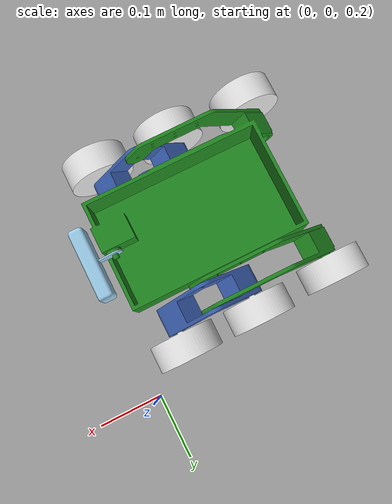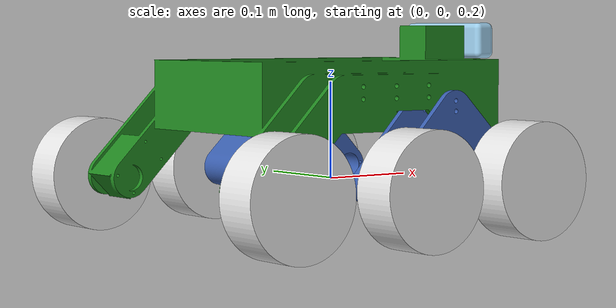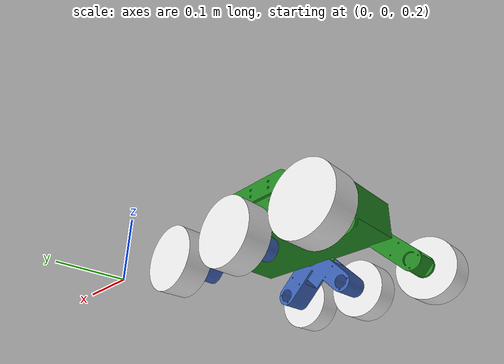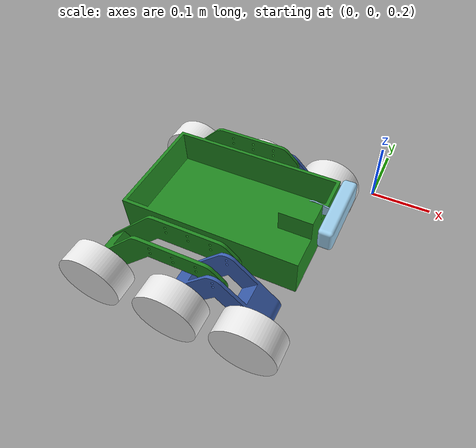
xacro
<?xml version="1.0" encoding="utf-8"?>
<!-- |    This document was autogenerated by xacro from robot.urdf                     | -->
<!-- |    EDITING THIS FILE BY HAND IS NOT RECOMMENDED                                 | -->
<robot name="robot">
  <xacro:include filename="$(find robot_description)/urdf/robot.trans" />
  <xacro:include filename="$(find robot_description)/urdf/robot.gazebo" />
  <link name="dummy" fixed="true">
  </link>

  <link name="l1">
    <visual>
      <origin xyz="-0.1623976833979026424 -0.20144544793473978528 0.26749193742773980098" rpy="1.5707963207290305263 2.9721157967096936663e-09 3.8418044321784632697e-10" />

      <geometry>
        <mesh filename="package://robot_description/archives/l1.stl"/>
      </geometry>
      <material name="l1_material">
        <color rgba="0.12941176470588236502 0.54117647058823525885 0.12941176470588236502 1.0"/>
      </material>
    </visual>
    <collision>
      <origin xyz="-0.1623976833979026424 -0.20144544793473978528 0.26749193742773980098" rpy="1.5707963207290305263 2.9721157967096936663e-09 3.8418044321784632697e-10" />
      <geometry>
        <mesh filename="package://robot_description/archives/l1.stl"/>
      </geometry>
    </collision>

    <inertial>
      <origin xyz="-0.18259398235284227119 -0.20236856510100109663 0.28038785160103718574" rpy="0 0 0"/>
      <mass value="1.1600736868674601521" />
      <inertia ixx="0.0066008651014344225244" ixy="0.000135586235209932273"  ixz="-0.0014781260412425468835" iyy="0.0106966871170354038" iyz="6.649765397261118234e-05" izz="0.015519266864299045838" />
    </inertial>
  </link>
  <link name="l2_l3_modificado-2_2">
    <visual>
        <origin xyz="5.5511151231257827021e-17 -2.7755575615628913511e-17 -0.039000000000000006883" rpy="1.570796326794896558 -8.2858707243642392136e-26 -3.3812745298728782663e-18" />
        <geometry>
        <mesh filename="package://robot_description/archives/l2_l3_modificado-2.stl"/>
        </geometry>
        <material name="l2_l3_modificado-2_material">
        <color rgba="0.2313725490196078538 0.38039215686274507888 0.7058823529411765163 1.0"/>
        </material>
    </visual>
    <collision>
        <origin xyz="5.5511151231257827021e-17 -2.7755575615628913511e-17 -0.039000000000000006883" rpy="1.570796326794896558 -8.2858707243642392136e-26 -3.3812745298728782663e-18" />
        <geometry>
        <mesh filename="package://robot_description/archives/l2_l3_modificado-2.stl"/>
        </geometry>
    </collision>
    <inertial>
        <origin xyz="0.041604917307636699042 -0.00094186232242261607416 -0.01700000000000001163" rpy="0 0 0"/>
        <mass value="0.19878085526035954578" />
        <inertia ixx="0.00045600719533735715626" ixy="-2.1979347753071165692e-06"  ixz="4.9485917399825457933e-28" iyy="0.0001117948906171440602" iyz="-6.0931890735852266954e-30" izz="0.00048695372639961931327" />
    </inertial>
  </link>

  <link name="l2_l3_modificado-2">
    <visual>
      <origin xyz="5.5511151231257827021e-17 0 -0.038999999999999979128" rpy="1.570796326794896558 4.2986550190141303174e-25 -3.216697786438753181e-18" />
      <geometry>
        <mesh filename="package://robot_description/archives/l2_l3_modificado-2.stl"/>
      </geometry>
      <material name="l2_l3_modificado-2_material">
        <color rgba="0.2313725490196078538 0.38039215686274507888 0.7058823529411765163 1.0"/>
      </material>
    </visual>
    <collision>
      <origin xyz="5.5511151231257827021e-17 0 -0.038999999999999979128" rpy="1.570796326794896558 4.2986550190141303174e-25 -3.216697786438753181e-18" />
      <geometry>
        <mesh filename="package://robot_description/archives/l2_l3_modificado-2.stl"/>
      </geometry>
    </collision>
    <inertial>
      <origin xyz="0.041604917307636699042 -0.00094186232242258831858 -0.016999999999999983874" rpy="0 0 0"/>
      <mass value="0.19878085526035954578" />
      <inertia ixx="0.00045600719533735693942" ixy="-2.1979347753071152987e-06"  ixz="-1.0461624586299991404e-28" iyy="0.0001117948906171440602" iyz="9.2711153304661378454e-30" izz="0.00048695372639961931327" />
    </inertial>
  </link>
   <link name="rueda10cm">
    <visual>
      <origin xyz="1.3877787807814456755e-17 0 -0.0030000000000000026645" rpy="-3.141592653589793116 -1.3232887103194747433e-25 2.6346479003792640069e-17" />
      <geometry>
          <mesh filename="package://robot_description/archives/rueda10cm.stl"/>
      </geometry>
      <material name="rueda10cm_material">
        <color rgba="0.92156862745098033773 0.92156862745098033773 0.92156862745098033773 1.0"/>
      </material>
    </visual>
    <collision>
      <origin xyz="1.3877787807814456755e-17 0 -0.0030000000000000026645" rpy="-3.141592653589793116 -1.3232887103194747433e-25 2.6346479003792640069e-17" />
      <geometry>
          <mesh filename="package://robot_description/archives/rueda10cm.stl"/>
      </geometry>
    </collision>
    <inertial>
      <origin xyz="1.294233490998378539e-17 9.8517850733825063838e-27 -0.022983887084686488445" rpy="0 0 0"/>
      <mass value="0.39299360600999816429" />
      <inertia ixx="0.00029793490712322410856" ixy="1.3173188654394999504e-20"  ixz="9.1874021171282252066e-29" iyy="0.00029793490712322416277" iyz="3.7183220189298748782e-29" izz="0.00049087753367729617185" />
    </inertial>
  </link>

  <link name="rueda10cm_2">
    <visual>
        <origin xyz="0 -1.3877787807814456755e-17 -0.0030000000000000026645" rpy="3.141592653589793116 -2.6504195547553351625e-25 -5.0019989647842346759e-17" />
        <geometry>
          <mesh filename="package://robot_description/archives/rueda10cm.stl"/>
        </geometry>
        <material name="rueda10cm_material">
        <color rgba="0.92156862745098033773 0.92156862745098033773 0.92156862745098033773 1.0"/>
        </material>
    </visual>
    <collision>
        <origin xyz="0 -1.3877787807814456755e-17 -0.0030000000000000026645" rpy="3.141592653589793116 -2.6504195547553351625e-25 -5.0019989647842346759e-17" />
        <geometry>
          <mesh filename="package://robot_description/archives/rueda10cm.stl"/>
        </geometry>
    </collision>
    <inertial>
        <origin xyz="-9.3545290370249415002e-19 -1.387778780482895257e-17 -0.022983887084686488445" rpy="0 0 0"/>
        <mass value="0.39299360600999816429" />
        <inertia ixx="0.00029793490712322421698" ixy="-2.5879488531348470936e-20"  ixz="2.7564737175589557739e-28" iyy="0.00029793490712322405435" iyz="-3.6156487985184271184e-28" izz="0.00049087753367729617185" />
    </inertial>
  </link>

  <link name="rueda10cm_3">
    <visual>
        <origin xyz="0 -4.1633363423443370266e-17 -0.0030000000000000026645" rpy="3.141592653589793116 2.4908934271607221179e-25 -8.0053156761873463748e-18" />
        <geometry>
          <mesh filename="package://robot_description/archives/rueda10cm.stl"/>
        </geometry>
        <material name="rueda10cm_material">
        <color rgba="0.92156862745098033773 0.92156862745098033773 0.92156862745098033773 1.0"/>
        </material>
    </visual>
    <collision>
        <origin xyz="0 -4.1633363423443370266e-17 -0.0030000000000000026645" rpy="3.141592653589793116 2.4908934271607221179e-25 -8.0053156761873463748e-18" />
        <geometry>
          <mesh filename="package://robot_description/archives/rueda10cm.stl"/>
        </geometry>
    </collision>
    <inertial>
        <origin xyz="-9.3545289037793300012e-19 -4.1633363414700092053e-17 -0.022983887084686488445" rpy="0 0 0"/>
        <mass value="0.39299360600999816429" />
        <inertia ixx="0.00029793490712322421698" ixy="-2.439209806515452231e-21"  ixz="-2.0483036187190332069e-28" iyy="0.00029793490712322416277" iyz="-2.9292185877211298753e-28" izz="0.00049087753367729638869" />
    </inertial>
  </link>

  <link name="rueda10cm_4">
    <visual>
        <origin xyz="0 6.9388939039072283776e-18 -0.0029999999999999887867" rpy="3.141592653589793116 -1.1528672886827154028e-24 1.4271986254412883463e-17" />
        <geometry>
          <mesh filename="package://robot_description/archives/rueda10cm.stl"/>
        </geometry>
        <material name="rueda10cm_material">
        <color rgba="0.92156862745098033773 0.92156862745098033773 0.92156862745098033773 1.0"/>
        </material>
    </visual>
    <collision>
        <origin xyz="0 6.9388939039072283776e-18 -0.0029999999999999887867" rpy="3.141592653589793116 -1.1528672886827154028e-24 1.4271986254412883463e-17" />
        <geometry>
          <mesh filename="package://robot_description/archives/rueda10cm.stl"/>
        </geometry>
    </collision>
    <inertial>
        <origin xyz="-9.3545291045017016982e-19 6.9388939147764589971e-18 -0.022983887084686474567" rpy="0 0 0"/>
        <mass value="0.39299360600999816429" />
        <inertia ixx="0.00029793490712322421698" ixy="7.2000410004067763659e-22"  ixz="7.0590919239142746815e-28" iyy="0.00029793490712322416277" iyz="-2.9065917041569690948e-28" izz="0.00049087753367729638869" />
    </inertial>
  </link>

  <link name="rueda10cm_5">
    <visual>
        <origin xyz="-5.5511151231257827021e-17 3.8163916471489756077e-17 -0.0030000000000000026645" rpy="3.141592653589793116 4.5599766001557814531e-26 -5.3448204808567667487e-17" />
        <geometry>
          <mesh filename="package://robot_description/archives/rueda10cm.stl"/>
        </geometry>
        <material name="rueda10cm_material">
        <color rgba="0.92156862745098033773 0.92156862745098033773 0.92156862745098033773 1.0"/>
        </material>
    </visual>
    <collision>
        <origin xyz="-5.5511151231257827021e-17 3.8163916471489756077e-17 -0.0030000000000000026645" rpy="3.141592653589793116 4.5599766001557814531e-26 -5.3448204808567667487e-17" />
        <geometry>
          <mesh filename="package://robot_description/archives/rueda10cm.stl"/>
        </geometry>
    </collision>
    <inertial>
        <origin xyz="-5.6446604118712877449e-17 3.8163916471733212111e-17 -0.022983887084686488445" rpy="0 0 0"/>
        <mass value="0.39299360600999816429" />
        <inertia ixx="0.00029793490712322421698" ixy="-2.3218875773836857727e-20"  ixz="-2.1600035251038875236e-28" iyy="0.00029793490712322416277" iyz="-1.1080630077344665209e-28" izz="0.00049087753367729617185" />
    </inertial>
  </link>

  <link name="rueda10cm_6">
    <visual>
        <origin xyz="-5.5511151231257827021e-17 2.7755575615628913511e-17 -0.0030000000000000026645" rpy="-3.141592653589793116 -4.8443625614625081283e-25 6.2726312896667128663e-17" />
        <geometry>
          <mesh filename="package://robot_description/archives/rueda10cm.stl"/>
        </geometry>
        <material name="rueda10cm_material">
        <color rgba="0.92156862745098033773 0.92156862745098033773 0.92156862745098033773 1.0"/>
        </material>
    </visual>
    <collision>
        <origin xyz="-5.5511151231257827021e-17 2.7755575615628913511e-17 -0.0030000000000000026645" rpy="-3.141592653589793116 -4.8443625614625081283e-25 6.2726312896667128663e-17" />
        <geometry>
          <mesh filename="package://robot_description/archives/rueda10cm.stl"/>
        </geometry>
    </collision>
    <inertial>
        <origin xyz="-5.6446604113580856548e-17 2.7755575623592649238e-17 -0.022983887084686488445" rpy="0 0 0"/>
        <mass value="0.39299360600999816429" />
        <inertia ixx="0.00029793490712322421698" ixy="-3.8673658401404432998e-20"  ixz="-1.8414552764643867941e-28" iyy="0.00029793490712322427119" iyz="-9.4221902638914639646e-29" izz="0.00049087753367729617185" />
    </inertial>
  </link>

  <link name="conexion_mr">
  <visual>
    <origin xyz="0 6.9388939039072283776e-18 0.0010000000000000008882" rpy="-1.570796326794896558 -8.1084492077740512287e-26 -1.0989427651290170218e-18" />
    <geometry>
      <mesh filename="package://robot_description/robot/conexion_mr.stl"/>
    </geometry>
    <material name="conexion_mr_material">
      <color rgba="0.61568627450980395466 0.81176470588235294379 0.92941176470588238168 1.0"/>
    </material>
  </visual>
  <collision>
    <origin xyz="0 6.9388939039072283776e-18 0.0010000000000000008882" rpy="-1.570796326794896558 -8.1084492077740512287e-26 -1.0989427651290170218e-18" />
    <geometry>
     <mesh filename="package://robot_description/robot/conexion_mr.stl"/>
    </geometry>
  </collision>
  <inertial>
    <origin xyz="5.857444094893600759e-19 -0.031653310614634153075 -0.00098346943959469424953" rpy="0 0 0"/>
    <mass value="0.49839642683248841504" />
  <inertia ixx="0.00041895941326657270805" ixy="6.6807887356152342232e-20"  ixz="3.4618973733355235438e-11" iyy="0.00043682618846628952589" iyz="-2.1404868092836559717e-07" izz="6.2269309644916189905e-05" />
  </inertial>
  </link>

  <!--joints-->

  <joint name="dummy_joint" type="fixed">
    <parent link="dummy"/>
    <child link="l1"/>
  </joint>

  <joint name="Junta_Pasiva_Derecha" type="revolute">
      <origin xyz="-0.12847176905482229903 -0.32544544781112361154 0.28572223970686733141" rpy="1.5707960183954783329 1.5511261948845664893 -3.0795557762774570826e-07" />
      <parent link="l1" />
      <child link="l2_l3_modificado-2" />
      <axis xyz="0 0 1"/>
      <limit effort="1" velocity="20" lower="-0.56" upper="2.0071286397934788859"/>
      <joint_properties friction="0.0"/>
  </joint>
  <joint name="Junta_Pasiva_Izquierda" type="revolute">
      <origin xyz="-0.12847176915009908549 -0.077445447811123502291 0.28572223820253256354" rpy="1.5707966702343139076 1.5531332946124785099 -3.141592309819767781" />
      <parent link="l1" />
      <child link="l2_l3_modificado-2_2" />
      <axis xyz="0 0 1"/>
      <limit effort="1" velocity="20" lower="-2.0071286397934788859" upper="0.56"/>
      <joint_properties friction="0.0"/>
  </joint>
 <joint name="Junta_R2" type="continuous">
      <origin xyz="0.060104076400856659701 0.060104076400856493168 0.0050000000000000044409" rpy="-3.141592653589793116 2.9562705873466152294e-18 -1.8301287006490860598" />
      <parent link="l2_l3_modificado-2" />
      <child link="rueda10cm" />
      <axis xyz="0 0 1"/>
      <limit effort="1" velocity="20" />
      <joint_properties friction="0.0"/>
  </joint>

  <joint name="Junta_R4" type="continuous">
      <origin xyz="0.060104076400856659701 -0.060104076400856465412 0.0049999999999999489297" rpy="-3.141592653589793116 7.3658748660732636819e-17 0.92941691210605825724" />
      <parent link="l2_l3_modificado-2" />
      <child link="rueda10cm_2" />
      <axis xyz="0 0 1"/>
      <limit effort="1" velocity="20" />
      <joint_properties friction="0.0"/>
  </joint>

  <joint name="Junta_R3" type="continuous">
      <origin xyz="0.060104076400856631945 0.060104076400856520923 0.0049999999999999905631" rpy="-3.141592653589793116 -4.2241592123221963104e-16 -0.49922167178213477934" />
      <parent link="l2_l3_modificado-2_2" />
      <child link="rueda10cm_3" />
      <axis xyz="0 0 1"/>
      <limit effort="1" velocity="20" />
      <joint_properties friction="0.0"/>
  </joint>

  <joint name="Junta_R1" type="continuous">
      <origin xyz="0.060104076400856659701 -0.060104076400856507045 0.0049999999999999905631" rpy="-3.141592653589793116 -7.6282239131955771344e-16 -0.25904331776269451382" />
      <parent link="l2_l3_modificado-2_2" />
      <child link="rueda10cm_4" />
      <axis xyz="0 0 1"/>
      <limit effort="1" velocity="20" />
      <joint_properties friction="0.0"/>
  </joint>

  <joint name="Junta_R5" type="continuous">
      <origin xyz="-0.31664389559457595258 -0.077445448247987117019 0.22562009378018710315" rpy="1.5707963196849008547 0.54880942899339246743 -3.3249042015534336724e-09" />
      <parent link="l1" />
      <child link="rueda10cm_5" />
      <axis xyz="0 0 1"/>
      <limit effort="1" velocity="20" />
      <joint_properties friction="0.0"/>
  </joint>

  <joint name="Junta_R6" type="continuous">
      <origin xyz="-0.31664389549929922163 -0.32544544824798721239 0.22562009528452187102" rpy="-1.5707963357497458645 0.82659653085727002875 -6.2032771584579110388e-09" />
      <parent link="l1" />
      <child link="rueda10cm_6" />
      <axis xyz="0 0 1"/>
      <limit effort="1" velocity="20" />
      <joint_properties friction="0.0"/>
  </joint>

  <joint name="Junta_camara" type="revolute">
    <origin xyz="-0.045397683173942562918 -0.19644544742878239374 0.3434919370496745672" rpy="-1.5707958774933501456 -1.5572952596564619832 3.1415922047133757466" />
    <parent link="l1" />
    <child link="conexion_mr" />
    <axis xyz="0 0 1"/>
    <limit effort="1" velocity="20" lower="-0.0471975511965976313" upper="1.0471975511965976313"/>
    <joint_properties friction="0.0"/>
  </joint>
</robot>
